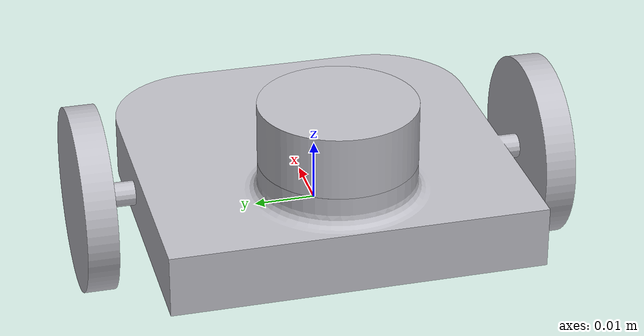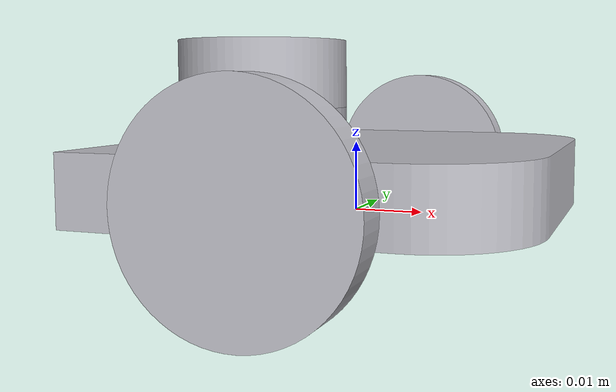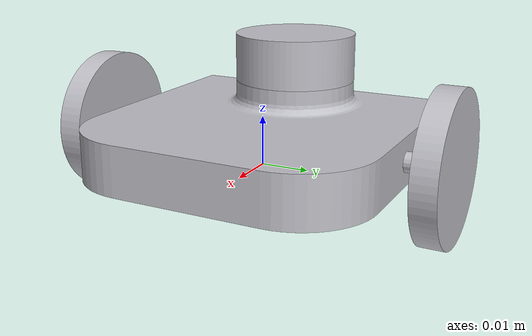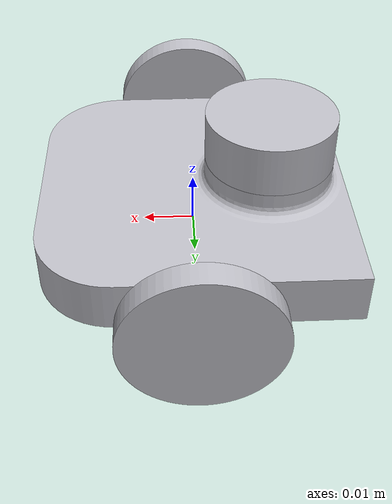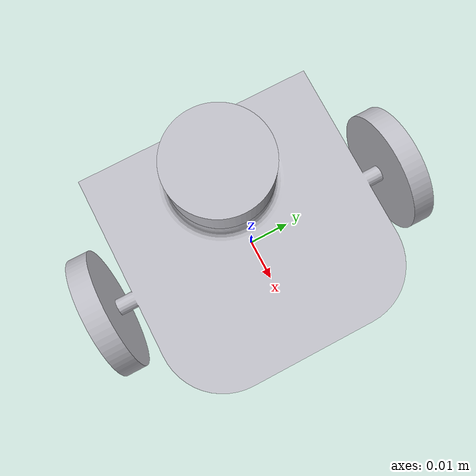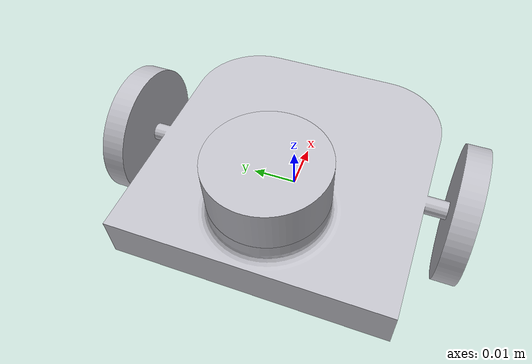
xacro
<?xml version="1.0" ?>
<robot name="urdf" xmlns:xacro="http://www.ros.org/wiki/xacro">

<xacro:include filename="$(find urdf_description)/urdf/materials.xacro" />
<xacro:include filename="$(find urdf_description)/urdf/urdf.trans" />
<xacro:include filename="$(find urdf_description)/urdf/urdf.gazebo" />
<link name="base_link">
  <inertial>
    <origin rpy="0 0 0" xyz="-0.0017087185306207842 -7.530162826293445e-18 0.00550958001577409"/>
    <mass value="0.2962889703388958"/>
    <inertia ixx="8.5e-05" ixy="-0.0" ixz="2e-06" iyy="8.7e-05" iyz="-0.0" izz="0.000165"/>
  </inertial>
  <visual>
    <origin rpy="0 0 0" xyz="0 0 0"/>
    <geometry>
      <mesh filename="package://urdf_description/meshes/base_link.stl" scale="0.001 0.001 0.001"/>
    </geometry>
    <material name="silver"/>
  </visual>
  <collision>
    <origin rpy="0 0 0" xyz="0 0 0"/>
    <geometry>
      <mesh filename="package://urdf_description/meshes/base_link.stl" scale="0.001 0.001 0.001"/>
    </geometry>
  </collision>
</link>

<link name="L_wheel_1">
  <inertial>
    <origin rpy="0 0 0" xyz="2.790586619720157e-18 0.0024999999999999953 7.45058077733507e-11"/>
    <mass value="0.02774419012201486"/>
    <inertia ixx="2e-06" ixy="-0.0" ixz="0.0" iyy="3e-06" iyz="-0.0" izz="2e-06"/>
  </inertial>
  <visual>
    <origin rpy="0 0 0" xyz="-0.0 -0.035 -0.005"/>
    <geometry>
      <mesh filename="package://urdf_description/meshes/L_wheel_1.stl" scale="0.001 0.001 0.001"/>
    </geometry>
    <material name="silver"/>
  </visual>
  <collision>
    <origin rpy="0 0 0" xyz="-0.0 -0.035 -0.005"/>
    <geometry>
      <mesh filename="package://urdf_description/meshes/L_wheel_1.stl" scale="0.001 0.001 0.001"/>
    </geometry>
  </collision>
</link>

<link name="R_wheel_1">
  <inertial>
    <origin rpy="0 0 0" xyz="4.7334769086782776e-18 -0.0024999999999999953 7.45058077733507e-11"/>
    <mass value="0.02774419012201486"/>
    <inertia ixx="2e-06" ixy="-0.0" ixz="0.0" iyy="3e-06" iyz="0.0" izz="2e-06"/>
  </inertial>
  <visual>
    <origin rpy="0 0 0" xyz="-0.0 0.035 -0.005"/>
    <geometry>
      <mesh filename="package://urdf_description/meshes/R_wheel_1.stl" scale="0.001 0.001 0.001"/>
    </geometry>
    <material name="silver"/>
  </visual>
  <collision>
    <origin rpy="0 0 0" xyz="-0.0 0.035 -0.005"/>
    <geometry>
      <mesh filename="package://urdf_description/meshes/R_wheel_1.stl" scale="0.001 0.001 0.001"/>
    </geometry>
  </collision>
</link>

<link name="lidar_1">
  <inertial>
    <origin rpy="0 0 0" xyz="-2.2351741811588166e-10 -1.767005734591857e-18 0.005000000000000001"/>
    <mass value="0.039457713453637556"/>
    <inertia ixx="2e-06" ixy="-0.0" ixz="0.0" iyy="2e-06" iyz="-0.0" izz="3e-06"/>
  </inertial>
  <visual>
    <origin rpy="0 0 0" xyz="0.015 0.0 -0.015"/>
    <geometry>
      <mesh filename="package://urdf_description/meshes/lidar_1.stl" scale="0.001 0.001 0.001"/>
    </geometry>
    <material name="silver"/>
  </visual>
  <collision>
    <origin rpy="0 0 0" xyz="0.015 0.0 -0.015"/>
    <geometry>
      <mesh filename="package://urdf_description/meshes/lidar_1.stl" scale="0.001 0.001 0.001"/>
    </geometry>
  </collision>
</link>

<joint name="Rev1" type="continuous">
  <origin rpy="0 0 0" xyz="0.0 0.035 0.005"/>
  <parent link="base_link"/>
  <child link="L_wheel_1"/>
  <axis xyz="0.0 1.0 0.0"/>
</joint>

<joint name="Rev2" type="continuous">
  <origin rpy="0 0 0" xyz="0.0 -0.035 0.005"/>
  <parent link="base_link"/>
  <child link="R_wheel_1"/>
  <axis xyz="0.0 -1.0 0.0"/>
</joint>

<joint name="Rev3" type="continuous">
  <origin rpy="0 0 0" xyz="-0.015 0.0 0.015"/>
  <parent link="base_link"/>
  <child link="lidar_1"/>
  <axis xyz="0.0 0.0 1.0"/>
</joint>

</robot>

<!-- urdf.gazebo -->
<robot name="urdf" xmlns:xacro="http://www.ros.org/wiki/xacro" >

<xacro:property name="body_color" value="Gazebo/Silver" />

<gazebo>
  <plugin filename="libgazebo_ros_control.so" name="control"/>
</gazebo>
<gazebo reference="base_link">
  <material>${body_color}</material>
  <mu1>0.1</mu1>
  <mu2>0.1</mu2>
  <selfCollide>true</selfCollide>
  <gravity>true</gravity>
</gazebo>

<gazebo reference="L_wheel_1">
  <material>${body_color}</material>
  <mu1>1500</mu1>
  <mu2>1500</mu2>
  <selfCollide>true</selfCollide>
</gazebo>

<gazebo reference="R_wheel_1">
  <material>${body_color}</material>
  <mu1>1500</mu1>
  <mu2>1500</mu2>
  <selfCollide>true</selfCollide>
</gazebo>

<gazebo reference="lidar_1">
  <material>${body_color}</material>
  <mu1>0.2</mu1>
  <mu2>0.2</mu2>
  <selfCollide>true</selfCollide>
</gazebo>
<gazebo>
  <plugin name="differential_drive_controller" filename="libgazebo_ros_diff_drive.so">

    <!-- Plugin update rate in Hz -->
    <updateRate>100</updateRate>

    <!-- Name of left joint, defaults to `left_joint` -->
    <leftJoint>Rev1</leftJoint>

    <!-- Name of right joint, defaults to `right_joint` -->
    <rightJoint>Rev2</rightJoint>

    <!-- The distance from the center of one wheel to the other, in meters, defaults to 0.34 m -->
    <wheelSeparation>0.075</wheelSeparation>

    <!-- Diameter of the wheels, in meters, defaults to 0.15 m -->
    <wheelDiameter>0.03</wheelDiameter>

    <!-- Wheel acceleration, in rad/s^2, defaults to 0.0 rad/s^2 -->
    <wheelAcceleration>1.0</wheelAcceleration>

    <!-- Maximum torque which the wheels can produce, in Nm, defaults to 5 Nm -->
    <wheelTorque>20</wheelTorque>

    <!-- Topic to receive geometry_msgs/Twist message commands, defaults to `cmd_vel` -->
    <commandTopic>cmd_vel</commandTopic>

    <!-- Topic to publish nav_msgs/Odometry messages, defaults to `odom` -->
    <odometryTopic>odom</odometryTopic>

    <!-- Odometry frame, defaults to `odom` -->
    <odometryFrame>odom</odometryFrame>

    <!-- Robot frame to calculate odometry from, defaults to `base_footprint` -->
    <robotBaseFrame>base_link</robotBaseFrame>

    <!-- Odometry source, 0 for ENCODER, 1 for WORLD, defaults to WORLD -->
    <odometrySource>1</odometrySource>

    <!-- Set to true to publish transforms for the wheel links, defaults to false -->
    <publishWheelTF>true</publishWheelTF>

    <!-- Set to true to publish transforms for the odometry, defaults to true -->
    <publishOdom>true</publishOdom>

    <!-- Set to true to publish sensor_msgs/JointState on /joint_states for the wheel joints, defaults to false -->
    <publishWheelJointState>true</publishWheelJointState>

    <!-- Set to true to swap right and left wheels, defaults to true -->
    <legacyMode>false</legacyMode>
  </plugin>
</gazebo>
</robot>
